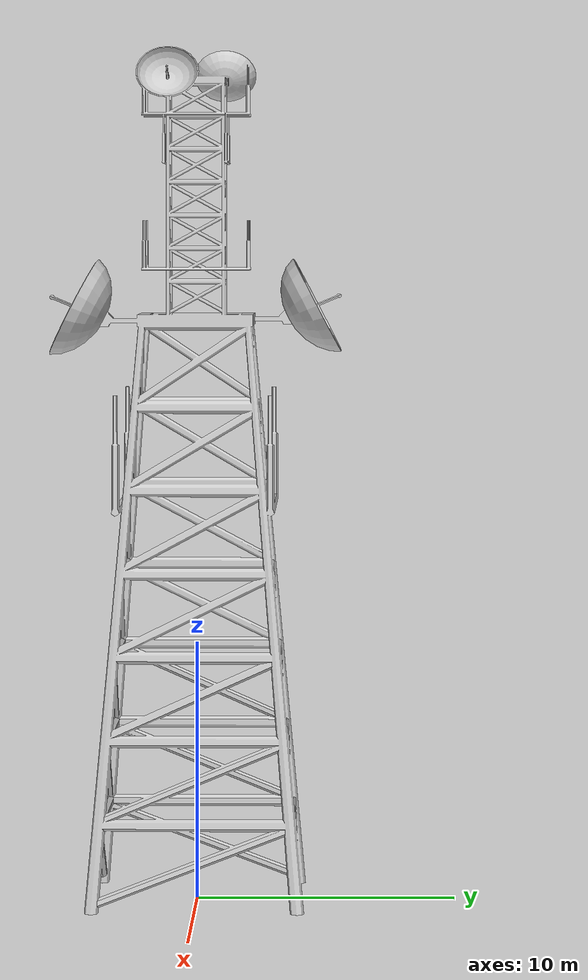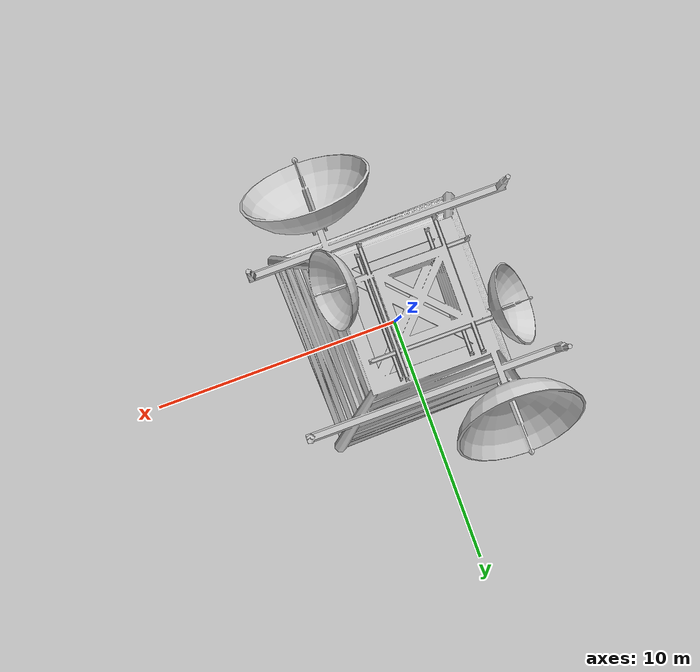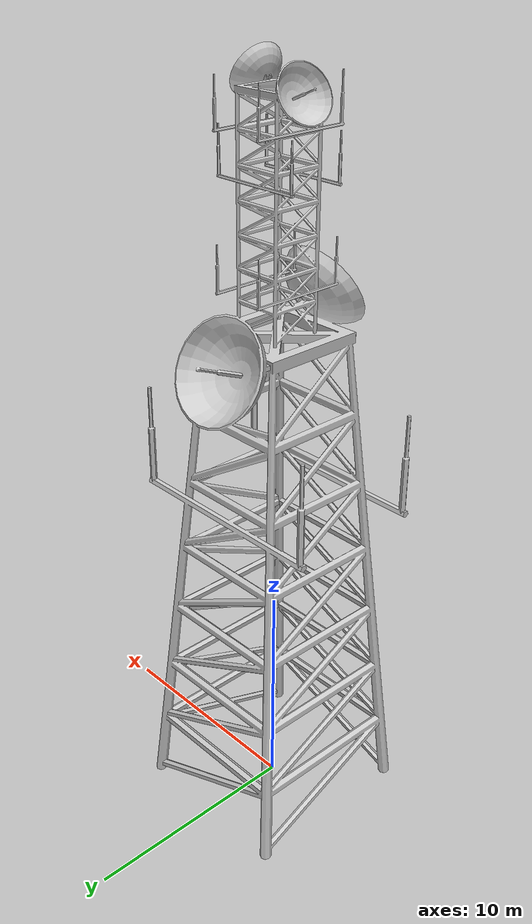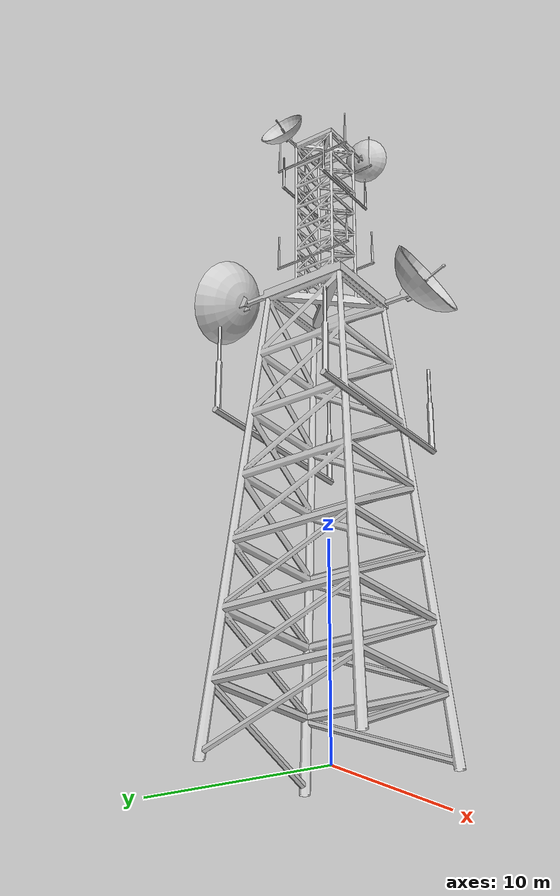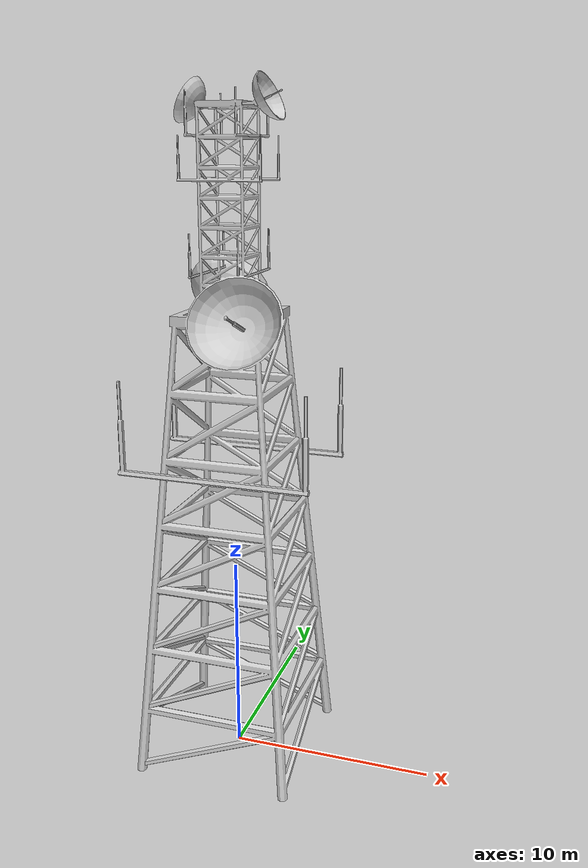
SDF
<?xml version='1.0'?>
<sdf version='1.6'>
  <model name='radio_tower'>
    <link name='link'>
      <self_collide>0</self_collide>
      <enable_wind>0</enable_wind>
      <kinematic>0</kinematic>
      <pose frame=''>0 0 0 0 -0 0</pose>
      <visual name='visual'>
        <geometry>
          <mesh>
            <uri>model://radio_tower/meshes/radio_tower.dae</uri>
          </mesh>
        </geometry>
        <pose frame=''>0 0 0 0 -0 0</pose>
        <transparency>0</transparency>
        <cast_shadows>1</cast_shadows>
      </visual>
      <collision name='collision'>
        <laser_retro>0</laser_retro>
        <max_contacts>10</max_contacts>
        <pose frame=''>0 0 0 0 -0 0</pose>
        <geometry>
          <mesh>
            <uri>model://radio_tower/meshes/radio_tower.dae</uri>
            <scale>1 1 1</scale>
          </mesh>
        </geometry>
        <surface>
          <friction>
            <ode>
              <mu>1</mu>
              <mu2>1</mu2>
              <fdir1>0 0 0</fdir1>
              <slip1>0</slip1>
              <slip2>0</slip2>
            </ode>
            <torsional>
              <coefficient>1</coefficient>
              <patch_radius>0</patch_radius>
              <surface_radius>0</surface_radius>
              <use_patch_radius>1</use_patch_radius>
              <ode>
                <slip>0</slip>
              </ode>
            </torsional>
          </friction>
          <bounce>
            <restitution_coefficient>0</restitution_coefficient>
            <threshold>1e+06</threshold>
          </bounce>
          <contact>
            <collide_without_contact>0</collide_without_contact>
            <collide_without_contact_bitmask>1</collide_without_contact_bitmask>
            <collide_bitmask>1</collide_bitmask>
            <ode>
              <soft_cfm>0</soft_cfm>
              <soft_erp>0.2</soft_erp>
              <kp>1e+13</kp>
              <kd>1</kd>
              <max_vel>0.01</max_vel>
              <min_depth>0</min_depth>
            </ode>
            <bullet>
              <split_impulse>1</split_impulse>
              <split_impulse_penetration_threshold>-0.01</split_impulse_penetration_threshold>
              <soft_cfm>0</soft_cfm>
              <soft_erp>0.2</soft_erp>
              <kp>1e+13</kp>
              <kd>1</kd>
            </bullet>
          </contact>
        </surface>
      </collision>
    </link>
    <static>1</static>
    <allow_auto_disable>1</allow_auto_disable>
  </model>
</sdf>
